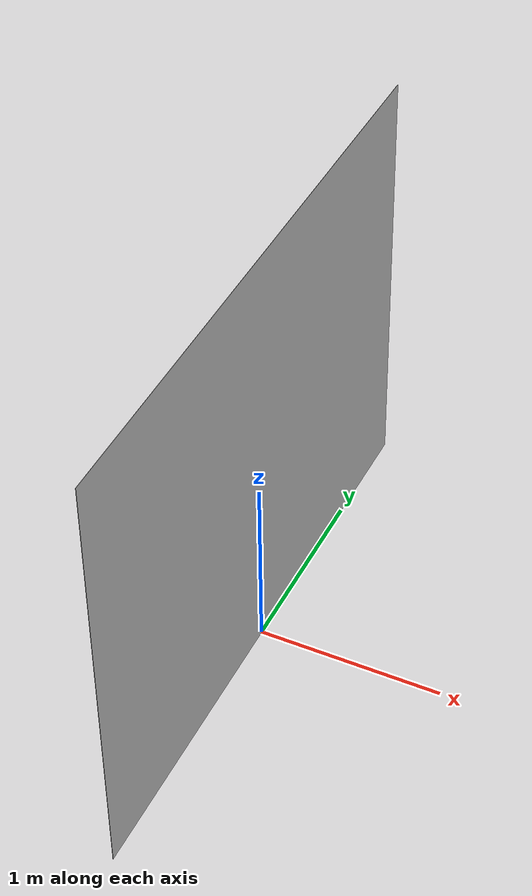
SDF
<!-- 声明这是一个 SDF 模型文件，版本使用 Gazebo 11 支持的 1.6。 -->
<sdf version="1.6">
  <!-- 定义一个名为 bus_billboard 的模型。 -->
  <model name="bus_billboard">
    <!-- 设置为静态模型，表示图片平面不会受重力或碰撞影响。 -->
    <static>true</static>
    <!-- 创建承载图片平面的刚体链接。 -->
    <link name="billboard_link">
      <!-- 定义可视元素，用于让相机看到贴图平面。 -->
      <visual name="bus_image_visual">
        <!-- 设置平面姿态，让平面变成竖直画面并朝向相机。 -->
        <pose>0 0 1.2 0 -1.5708 0</pose>
        <!-- 定义几何形状。 -->
        <geometry>
          <!-- 使用平面几何体承载图片纹理。 -->
          <plane>
            <!-- 设置平面法向量沿 z 轴，后续通过 pose 把它转成竖直方向。 -->
            <normal>0 0 1</normal>
            <!-- 设置平面宽 2.4 米、高 3.2 米，比例接近 bus.jpg 的宽高比。 -->
            <size>2.4 3.2</size>
          <!-- 结束平面几何体定义。 -->
          </plane>
        <!-- 结束几何定义。 -->
        </geometry>
        <!-- 定义平面材质，让它显示公交车图片。 -->
        <material>
          <!-- 使用 Gazebo/Ogre 材质脚本。 -->
          <script>
            <!-- 指定材质脚本所在目录。 -->
            <uri>model://bus_billboard/materials/scripts</uri>
            <!-- 指定纹理图片所在目录，让材质脚本中的 bus.jpg 能被找到。 -->
            <uri>model://bus_billboard/materials/textures</uri>
            <!-- 指定材质脚本中定义的材质名称。 -->
            <name>YoloCourse/BusBillboard</name>
          <!-- 结束材质脚本定义。 -->
          </script>
        <!-- 结束材质定义。 -->
        </material>
      <!-- 结束可视元素定义。 -->
      </visual>
    <!-- 结束链接定义。 -->
    </link>
  <!-- 结束模型定义。 -->
  </model>
<!-- 结束 SDF 文件。 -->
</sdf>
